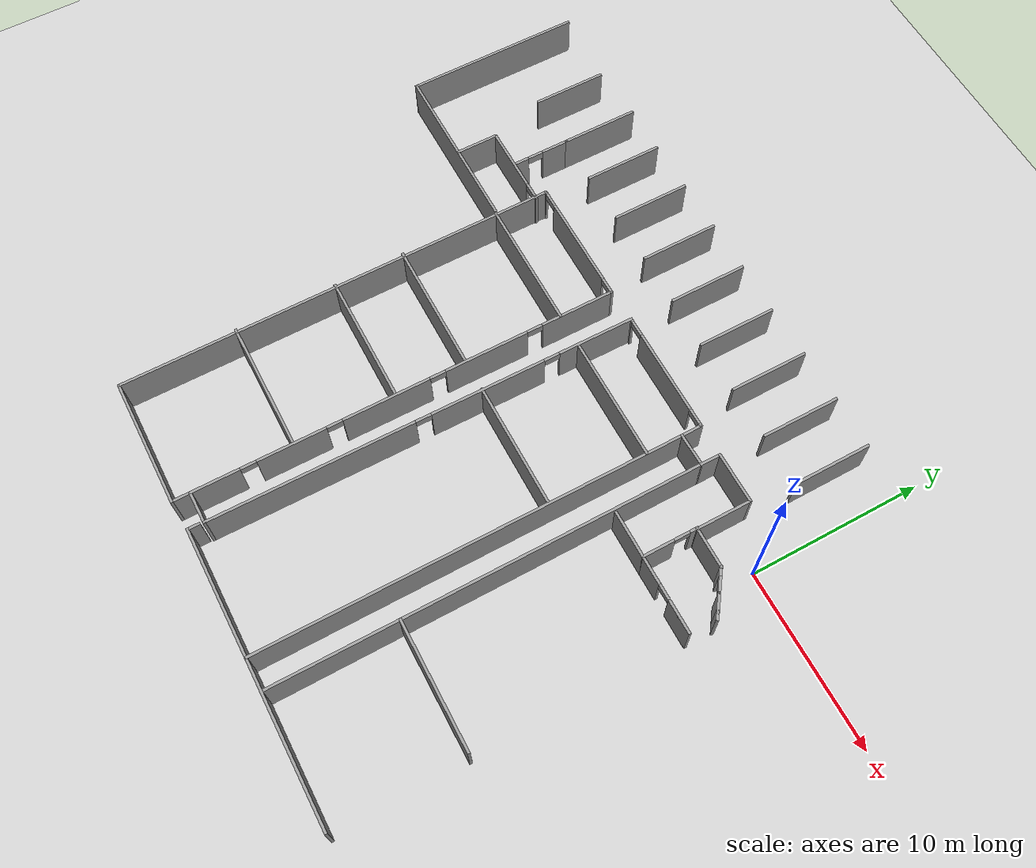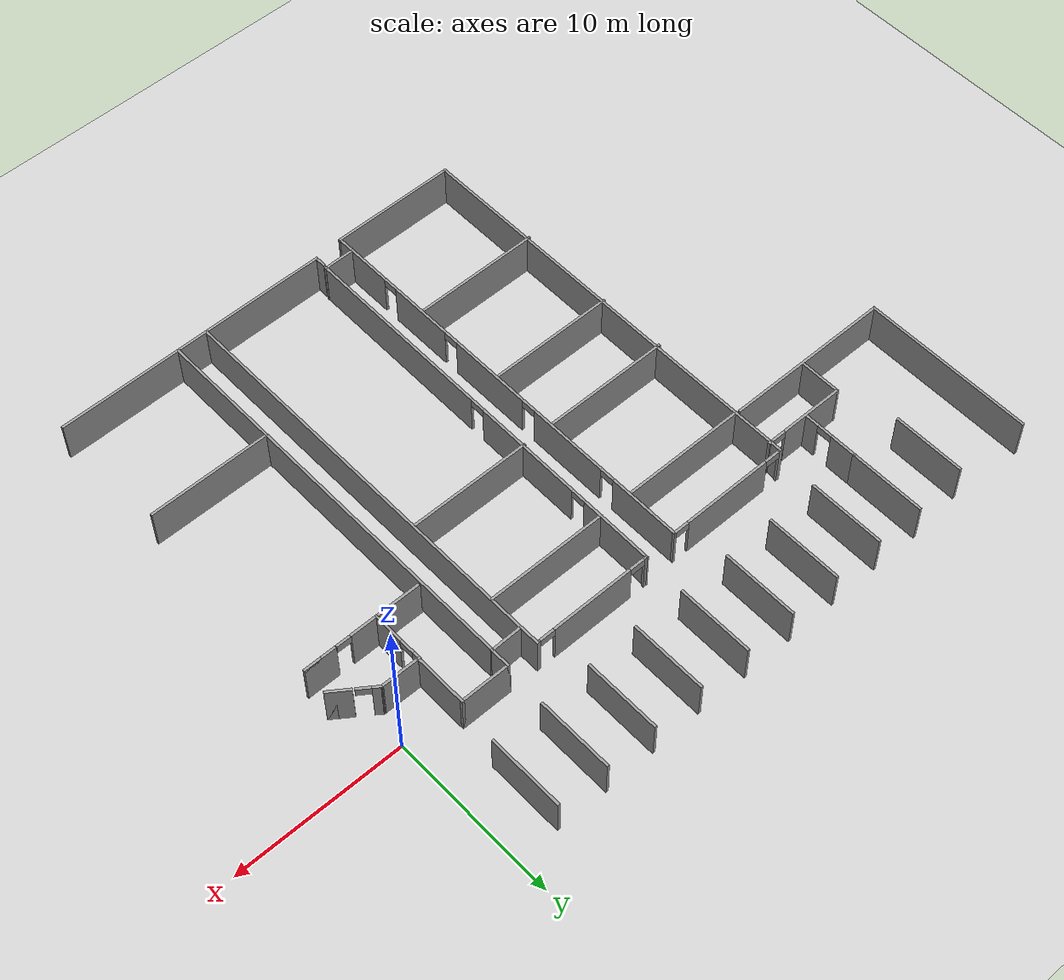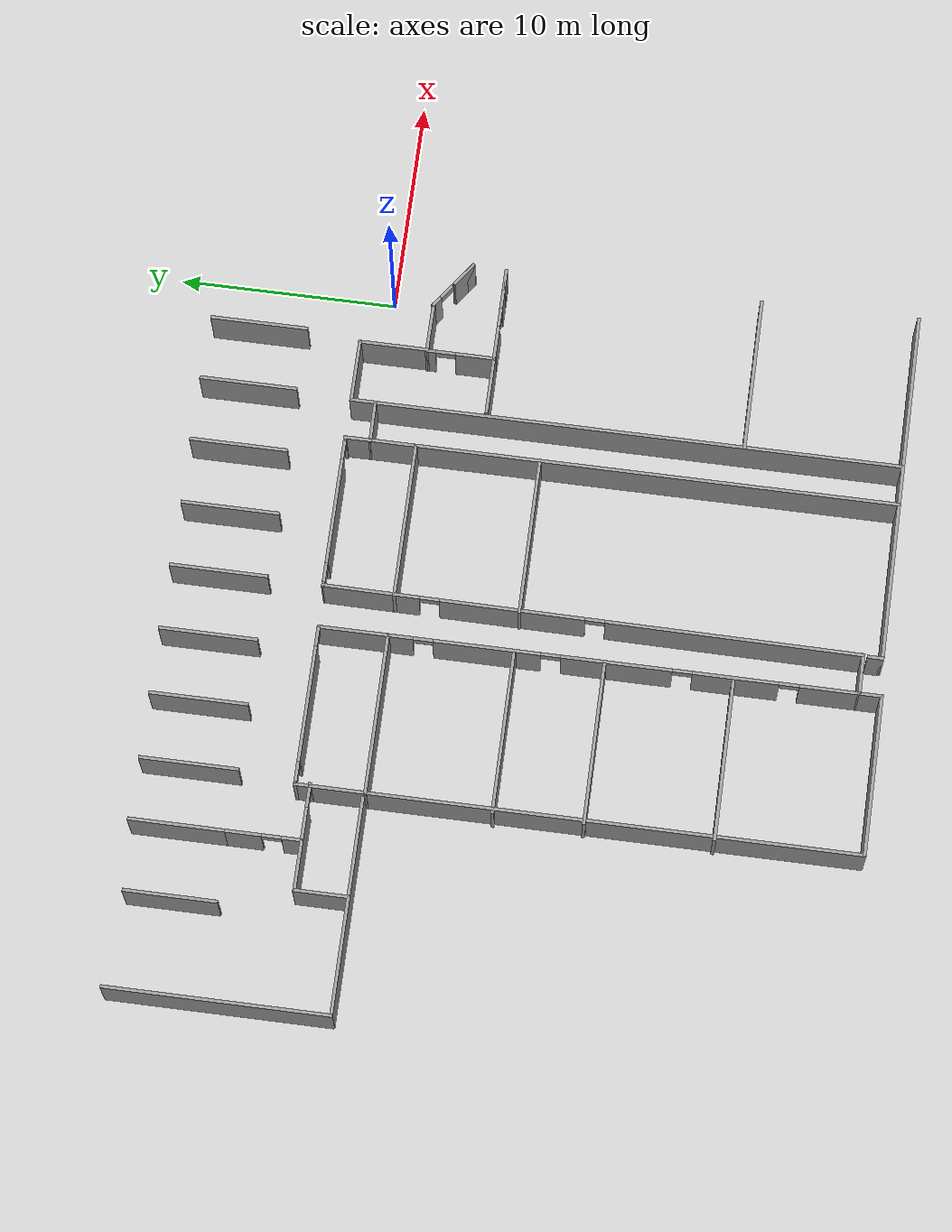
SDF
<sdf version="1.7">
 <world name="default">
  <model name="ground_plane">
   <static>1</static>
   <link name="link">
    <collision name="collision">
     <geometry><plane><normal>0 0 1</normal><size>100 100</size></plane></geometry>
     <surface><friction><ode><mu>100</mu><mu2>50</mu2></ode></friction></surface>
    </collision>
    <visual name="visual">
     <cast_shadows>0</cast_shadows>
     <geometry><plane><normal>0 0 1</normal><size>100 100</size></plane></geometry>
     <material>
      <script><uri>file://media/materials/scripts/gazebo.material</uri><name>Gazebo/Grey</name></script>
     </material>
    </visual>
   </link>
  </model>
  <model name="jec_6th_all_doors">
   <pose>6.89447 -8.09984 0 0 -0 0</pose>
   <link name="Wall_114">
    <pose>-17.9306 9.30234 0 0 -0 0</pose>
    <visual name="Wall_114_Visual_0">
     <pose>-3.49815 0 1.25 0 -0 0</pose>
     <geometry><box><size>0.253703 0.15 2.5</size></box></geometry>
     <material>
      <script><uri>file://media/materials/scripts/gazebo.material</uri><name>Gazebo/Grey</name></script>
      <ambient>1 1 1 1</ambient>
     </material>
     <meta><layer>0</layer></meta>
    </visual>
    <collision name="Wall_114_Collision_0">
     <geometry><box><size>0.253703 0.15 2.5</size></box></geometry>
     <pose>-3.49815 0 1.25 0 -0 0</pose>
    </collision>
    <visual name="Wall_114_Visual_1">
     <pose>0.013816 0 1.25 0 -0 0</pose>
     <geometry><box><size>4.97023 0.15 2.5</size></box></geometry>
     <material>
      <script><uri>file://media/materials/scripts/gazebo.material</uri><name>Gazebo/Grey</name></script>
      <ambient>1 1 1 1</ambient>
     </material>
     <meta><layer>0</layer></meta>
    </visual>
    <collision name="Wall_114_Collision_1">
     <geometry><box><size>4.97023 0.15 2.5</size></box></geometry>
     <pose>0.013816 0 1.25 0 -0 0</pose>
    </collision>
    <visual name="Wall_114_Visual_2">
     <pose>3.51197 0 1.25 0 -0 0</pose>
     <geometry><box><size>0.22607 0.15 2.5</size></box></geometry>
     <material>
      <script><uri>file://media/materials/scripts/gazebo.material</uri><name>Gazebo/Grey</name></script>
      <ambient>1 1 1 1</ambient>
     </material>
     <meta><layer>0</layer></meta>
    </visual>
    <collision name="Wall_114_Collision_2">
     <geometry><box><size>0.22607 0.15 2.5</size></box></geometry>
     <pose>3.51197 0 1.25 0 -0 0</pose>
    </collision>
    <visual name="Wall_114_Visual_3">
     <pose>-2.9213 0 2.25 0 -0 0</pose>
     <geometry><box><size>0.9 0.15 0.5</size></box></geometry>
     <material>
      <script><uri>file://media/materials/scripts/gazebo.material</uri><name>Gazebo/Grey</name></script>
      <ambient>1 1 1 1</ambient>
     </material>
     <meta><layer>0</layer></meta>
    </visual>
    <collision name="Wall_114_Collision_3">
     <geometry><box><size>0.9 0.15 0.5</size></box></geometry>
     <pose>-2.9213 0 2.25 0 -0 0</pose>
    </collision>
    <visual name="Wall_114_Visual_4">
     <pose>2.94893 0 2.25 0 -0 0</pose>
     <geometry><box><size>0.9 0.15 0.5</size></box></geometry>
     <material>
      <script><uri>file://media/materials/scripts/gazebo.material</uri><name>Gazebo/Grey</name></script>
      <ambient>1 1 1 1</ambient>
     </material>
     <meta><layer>0</layer></meta>
    </visual>
    <collision name="Wall_114_Collision_4">
     <geometry><box><size>0.9 0.15 0.5</size></box></geometry>
     <pose>2.94893 0 2.25 0 -0 0</pose>
    </collision>
   </link>
   <link name="Wall_115">
    <collision name="Wall_115_Collision">
     <geometry><box><size>1.29228 0.15 2.5</size></box></geometry>
     <pose>0 0 1.25 0 -0 0</pose>
    </collision>
    <visual name="Wall_115_Visual">
     <pose>0 0 1.25 0 -0 0</pose>
     <geometry><box><size>1.29228 0.15 2.5</size></box></geometry>
     <material>
      <script><uri>file://media/materials/scripts/gazebo.material</uri><name>Gazebo/Grey</name></script>
      <ambient>1 1 1 1</ambient>
     </material>
     <meta><layer>0</layer></meta>
    </visual>
    <pose>-14.3714 8.72789 0 0 -0 -1.56045</pose>
   </link>
   <link name="Wall_116">
    <collision name="Wall_116_Collision">
     <geometry><box><size>1.98184 0.15 2.5</size></box></geometry>
     <pose>0 0 1.25 0 -0 0</pose>
    </collision>
    <visual name="Wall_116_Visual">
     <pose>0 0 1.25 0 -0 0</pose>
     <geometry><box><size>1.98184 0.15 2.5</size></box></geometry>
     <material>
      <script><uri>file://media/materials/scripts/gazebo.material</uri><name>Gazebo/Grey</name></script>
      <ambient>1 1 1 1</ambient>
     </material>
     <meta><layer>0</layer></meta>
    </visual>
    <pose>-13.4497 8.17381 0 0 -0 0.018591</pose>
   </link>
   <link name="Wall_117">
    <collision name="Wall_117_Collision">
     <geometry><box><size>1.25 0.15 2.5</size></box></geometry>
     <pose>0 0 1.25 0 -0 0</pose>
    </collision>
    <visual name="Wall_117_Visual">
     <pose>0 0 1.25 0 -0 0</pose>
     <geometry><box><size>1.25 0.15 2.5</size></box></geometry>
     <material>
      <script><uri>file://media/materials/scripts/gazebo.material</uri><name>Gazebo/Grey</name></script>
      <ambient>1 1 1 1</ambient>
     </material>
     <meta><layer>0</layer></meta>
    </visual>
    <pose>-12.5339 8.74083 0 0 -0 1.5708</pose>
   </link>
   <link name="Wall_118">
    <collision name="Wall_118_Collision">
     <geometry><box><size>3 0.15 2.5</size></box></geometry>
     <pose>0 0 1.25 0 -0 0</pose>
    </collision>
    <visual name="Wall_118_Visual">
     <pose>0 0 1.25 0 -0 0</pose>
     <geometry><box><size>3 0.15 2.5</size></box></geometry>
     <material>
      <script><uri>file://media/materials/scripts/gazebo.material</uri><name>Gazebo/Grey</name></script>
      <ambient>1 1 1 1</ambient>
     </material>
     <meta><layer>0</layer></meta>
    </visual>
    <pose>-11.1089 9.29083 0 0 -0 0</pose>
   </link>
   <link name="Wall_164">
    <collision name="Wall_164_Collision">
     <geometry><box><size>24.25 0.15 2.5</size></box></geometry>
     <pose>0 0 1.25 0 -0 0</pose>
    </collision>
    <visual name="Wall_164_Visual">
     <pose>0 0 1.25 0 -0 0</pose>
     <geometry><box><size>24.25 0.15 2.5</size></box></geometry>
     <material>
      <script><uri>file://media/materials/scripts/gazebo.material</uri><name>Gazebo/Grey</name></script>
      <ambient>1 1 1 1</ambient>
     </material>
     <meta><layer>0</layer></meta>
    </visual>
    <pose>-12.542 -3.871 0 0 -0 1.5708</pose>
   </link>
   <link name="Wall_166">
    <collision name="Wall_166_Collision">
     <geometry><box><size>24.25 0.15 2.5</size></box></geometry>
     <pose>0 0 1.25 0 -0 0</pose>
    </collision>
    <visual name="Wall_166_Visual">
     <pose>0 0 1.25 0 -0 0</pose>
     <geometry><box><size>24.25 0.15 2.5</size></box></geometry>
     <material>
      <script><uri>file://media/materials/scripts/gazebo.material</uri><name>Gazebo/Grey</name></script>
      <ambient>1 1 1 1</ambient>
     </material>
     <meta><layer>0</layer></meta>
    </visual>
    <pose>-14.3655 -3.89322 0 0 -0 -1.5708</pose>
   </link>
   <link name="Wall_168">
    <collision name="Wall_168_Collision">
     <geometry><box><size>7.25 0.15 2.5</size></box></geometry>
     <pose>0 0 1.25 0 -0 0</pose>
    </collision>
    <visual name="Wall_168_Visual">
     <pose>0 0 1.25 0 -0 0</pose>
     <geometry><box><size>7.25 0.15 2.5</size></box></geometry>
     <material>
      <script><uri>file://media/materials/scripts/gazebo.material</uri><name>Gazebo/Grey</name></script>
      <ambient>1 1 1 1</ambient>
     </material>
     <meta><layer>0</layer></meta>
    </visual>
    <pose>-18.0458 0.388789 0 0 -0 0</pose>
   </link>
   <link name="Wall_17">
    <pose>-21.5623 -2.90601 0 0 -0 -1.57748</pose>
    <visual name="Wall_17_Visual_0">
     <pose>-10.0629 0 1.25 0 -0 0</pose>
     <geometry><box><size>4.44153 0.15 2.5</size></box></geometry>
     <material>
      <script><uri>file://media/materials/scripts/gazebo.material</uri><name>Gazebo/Grey</name></script>
      <ambient>1 1 1 1</ambient>
     </material>
     <meta><layer>0</layer></meta>
    </visual>
    <collision name="Wall_17_Collision_0">
     <geometry><box><size>4.44153 0.15 2.5</size></box></geometry>
     <pose>-10.0629 0 1.25 0 -0 0</pose>
    </collision>
    <visual name="Wall_17_Visual_1">
     <pose>-3.63692 0 1.25 0 -0 0</pose>
     <geometry><box><size>6.61036 0.15 2.5</size></box></geometry>
     <material>
      <script><uri>file://media/materials/scripts/gazebo.material</uri><name>Gazebo/Grey</name></script>
      <ambient>1 1 1 1</ambient>
     </material>
     <meta><layer>0</layer></meta>
    </visual>
    <collision name="Wall_17_Collision_1">
     <geometry><box><size>6.61036 0.15 2.5</size></box></geometry>
     <pose>-3.63692 0 1.25 0 -0 0</pose>
    </collision>
    <visual name="Wall_17_Visual_2">
     <pose>6.42594 0 1.25 0 -0 0</pose>
     <geometry><box><size>11.7154 0.15 2.5</size></box></geometry>
     <material>
      <script><uri>file://media/materials/scripts/gazebo.material</uri><name>Gazebo/Grey</name></script>
      <ambient>1 1 1 1</ambient>
     </material>
     <meta><layer>0</layer></meta>
    </visual>
    <collision name="Wall_17_Collision_2">
     <geometry><box><size>11.7154 0.15 2.5</size></box></geometry>
     <pose>6.42594 0 1.25 0 -0 0</pose>
    </collision>
    <visual name="Wall_17_Visual_3">
     <pose>-7.39209 0 2.25 0 -0 0</pose>
     <geometry><box><size>0.9 0.15 0.5</size></box></geometry>
     <material>
      <script><uri>file://media/materials/scripts/gazebo.material</uri><name>Gazebo/Grey</name></script>
      <ambient>1 1 1 1</ambient>
     </material>
     <meta><layer>0</layer></meta>
    </visual>
    <collision name="Wall_17_Collision_3">
     <geometry><box><size>0.9 0.15 0.5</size></box></geometry>
     <pose>-7.39209 0 2.25 0 -0 0</pose>
    </collision>
    <visual name="Wall_17_Visual_4">
     <pose>0.118263 0 2.25 0 -0 0</pose>
     <geometry><box><size>0.9 0.15 0.5</size></box></geometry>
     <material>
      <script><uri>file://media/materials/scripts/gazebo.material</uri><name>Gazebo/Grey</name></script>
      <ambient>1 1 1 1</ambient>
     </material>
     <meta><layer>0</layer></meta>
    </visual>
    <collision name="Wall_17_Collision_4">
     <geometry><box><size>0.9 0.15 0.5</size></box></geometry>
     <pose>0.118263 0 2.25 0 -0 0</pose>
    </collision>
   </link>
   <link name="Wall_170">
    <collision name="Wall_170_Collision">
     <geometry><box><size>7.25 0.15 2.5</size></box></geometry>
     <pose>0 0 1.25 0 -0 0</pose>
    </collision>
    <visual name="Wall_170_Visual">
     <pose>0 0 1.25 0 -0 0</pose>
     <geometry><box><size>7.25 0.15 2.5</size></box></geometry>
     <material>
      <script><uri>file://media/materials/scripts/gazebo.material</uri><name>Gazebo/Grey</name></script>
      <ambient>1 1 1 1</ambient>
     </material>
     <meta><layer>0</layer></meta>
    </visual>
    <pose>-17.962 6.0697 0 0 -0 0</pose>
   </link>
   <link name="Wall_172">
    <collision name="Wall_172_Collision">
     <geometry><box><size>7.5 0.15 2.5</size></box></geometry>
     <pose>0 0 1.25 0 -0 0</pose>
    </collision>
    <visual name="Wall_172_Visual">
     <pose>0 0 1.25 0 -0 0</pose>
     <geometry><box><size>7.5 0.15 2.5</size></box></geometry>
     <material>
      <script><uri>file://media/materials/scripts/gazebo.material</uri><name>Gazebo/Grey</name></script>
      <ambient>1 1 1 1</ambient>
     </material>
     <meta><layer>0</layer></meta>
    </visual>
    <pose>-27.1444 6.0861 0 0 -0 0</pose>
   </link>
   <link name="Wall_174">
    <collision name="Wall_174_Collision">
     <geometry><box><size>7.5 0.15 2.5</size></box></geometry>
     <pose>0 0 1.25 0 -0 0</pose>
    </collision>
    <visual name="Wall_174_Visual">
     <pose>0 0 1.25 0 -0 0</pose>
     <geometry><box><size>7.5 0.15 2.5</size></box></geometry>
     <material>
      <script><uri>file://media/materials/scripts/gazebo.material</uri><name>Gazebo/Grey</name></script>
      <ambient>1 1 1 1</ambient>
     </material>
     <meta><layer>0</layer></meta>
    </visual>
    <pose>-27.2593 0.386482 0 0 -0 0</pose>
   </link>
   <link name="Wall_176">
    <collision name="Wall_176_Collision">
     <geometry><box><size>7.5 0.15 2.5</size></box></geometry>
     <pose>0 0 1.25 0 -0 0</pose>
    </collision>
    <visual name="Wall_176_Visual">
     <pose>0 0 1.25 0 -0 0</pose>
     <geometry><box><size>7.5 0.15 2.5</size></box></geometry>
     <material>
      <script><uri>file://media/materials/scripts/gazebo.material</uri><name>Gazebo/Grey</name></script>
      <ambient>1 1 1 1</ambient>
     </material>
     <meta><layer>0</layer></meta>
    </visual>
    <pose>-27.2178 -3.68884 0 0 -0 0</pose>
   </link>
   <link name="Wall_178">
    <collision name="Wall_178_Collision">
     <geometry><box><size>7.5 0.15 2.5</size></box></geometry>
     <pose>0 0 1.25 0 -0 0</pose>
    </collision>
    <visual name="Wall_178_Visual">
     <pose>0 0 1.25 0 -0 0</pose>
     <geometry><box><size>7.5 0.15 2.5</size></box></geometry>
     <material>
      <script><uri>file://media/materials/scripts/gazebo.material</uri><name>Gazebo/Grey</name></script>
      <ambient>1 1 1 1</ambient>
     </material>
     <meta><layer>0</layer></meta>
    </visual>
    <pose>-27.2386 -9.48993 0 0 -0 0</pose>
   </link>
   <link name="Wall_18">
    <collision name="Wall_18_Collision">
     <geometry><box><size>1.95039 0.15 2.5</size></box></geometry>
     <pose>0 0 1.25 0 -0 0</pose>
    </collision>
    <visual name="Wall_18_Visual">
     <pose>0 0 1.25 0 -0 0</pose>
     <geometry><box><size>1.95039 0.15 2.5</size></box></geometry>
     <material>
      <script><uri>file://media/materials/scripts/gazebo.material</uri><name>Gazebo/Grey</name></script>
      <ambient>1 1 1 1</ambient>
     </material>
     <meta><layer>0</layer></meta>
    </visual>
    <pose>-22.5374 -15.125 0 0 -0 -3.13727</pose>
   </link>
   <link name="Wall_182">
    <collision name="Wall_182_Collision">
     <geometry><box><size>7.25 0.15 2.5</size></box></geometry>
     <pose>0 0 1.25 0 -0 0</pose>
    </collision>
    <visual name="Wall_182_Visual">
     <pose>0 0 1.25 0 -0 0</pose>
     <geometry><box><size>7.25 0.15 2.5</size></box></geometry>
     <material>
      <script><uri>file://media/materials/scripts/gazebo.material</uri><name>Gazebo/Grey</name></script>
      <ambient>1 1 1 1</ambient>
     </material>
     <meta><layer>0</layer></meta>
    </visual>
    <pose>-8.98303 -8.7414 0 0 -0 0</pose>
   </link>
   <link name="Wall_19">
    <pose>-23.4376 -2.95384 0 0 -0 1.5708</pose>
    <visual name="Wall_19_Visual_0">
     <pose>-10.8656 0 1.25 0 -0 0</pose>
     <geometry><box><size>2.76882 0.15 2.5</size></box></geometry>
     <material>
      <script><uri>file://media/materials/scripts/gazebo.material</uri><name>Gazebo/Grey</name></script>
      <ambient>1 1 1 1</ambient>
     </material>
     <meta><layer>0</layer></meta>
    </visual>
    <collision name="Wall_19_Collision_0">
     <geometry><box><size>2.76882 0.15 2.5</size></box></geometry>
     <pose>-10.8656 0 1.25 0 -0 0</pose>
    </collision>
    <visual name="Wall_19_Visual_1">
     <pose>-6.62965 0 1.25 0 -0 0</pose>
     <geometry><box><size>3.90306 0.15 2.5</size></box></geometry>
     <material>
      <script><uri>file://media/materials/scripts/gazebo.material</uri><name>Gazebo/Grey</name></script>
      <ambient>1 1 1 1</ambient>
     </material>
     <meta><layer>0</layer></meta>
    </visual>
    <collision name="Wall_19_Collision_1">
     <geometry><box><size>3.90306 0.15 2.5</size></box></geometry>
     <pose>-6.62965 0 1.25 0 -0 0</pose>
    </collision>
    <visual name="Wall_19_Visual_2">
     <pose>-1.2652 0 1.25 0 -0 0</pose>
     <geometry><box><size>5.02585 0.15 2.5</size></box></geometry>
     <material>
      <script><uri>file://media/materials/scripts/gazebo.material</uri><name>Gazebo/Grey</name></script>
      <ambient>1 1 1 1</ambient>
     </material>
     <meta><layer>0</layer></meta>
    </visual>
    <collision name="Wall_19_Collision_2">
     <geometry><box><size>5.02585 0.15 2.5</size></box></geometry>
     <pose>-1.2652 0 1.25 0 -0 0</pose>
    </collision>
    <visual name="Wall_19_Visual_3">
     <pose>4.57983 0 1.25 0 -0 0</pose>
     <geometry><box><size>4.86422 0.15 2.5</size></box></geometry>
     <material>
      <script><uri>file://media/materials/scripts/gazebo.material</uri><name>Gazebo/Grey</name></script>
      <ambient>1 1 1 1</ambient>
     </material>
     <meta><layer>0</layer></meta>
    </visual>
    <collision name="Wall_19_Collision_3">
     <geometry><box><size>4.86422 0.15 2.5</size></box></geometry>
     <pose>4.57983 0 1.25 0 -0 0</pose>
    </collision>
    <visual name="Wall_19_Visual_4">
     <pose>10.081 0 1.25 0 -0 0</pose>
     <geometry><box><size>4.33806 0.15 2.5</size></box></geometry>
     <material>
      <script><uri>file://media/materials/scripts/gazebo.material</uri><name>Gazebo/Grey</name></script>
      <ambient>1 1 1 1</ambient>
     </material>
     <meta><layer>0</layer></meta>
    </visual>
    <collision name="Wall_19_Collision_4">
     <geometry><box><size>4.33806 0.15 2.5</size></box></geometry>
     <pose>10.081 0 1.25 0 -0 0</pose>
    </collision>
    <visual name="Wall_19_Visual_5">
     <pose>-9.03118 0 2.25 0 -0 0</pose>
     <geometry><box><size>0.9 0.15 0.5</size></box></geometry>
     <material>
      <script><uri>file://media/materials/scripts/gazebo.material</uri><name>Gazebo/Grey</name></script>
      <ambient>1 1 1 1</ambient>
     </material>
     <meta><layer>0</layer></meta>
    </visual>
    <collision name="Wall_19_Collision_5">
     <geometry><box><size>0.9 0.15 0.5</size></box></geometry>
     <pose>-9.03118 0 2.25 0 -0 0</pose>
    </collision>
    <visual name="Wall_19_Visual_6">
     <pose>-4.22813 0 2.25 0 -0 0</pose>
     <geometry><box><size>0.9 0.15 0.5</size></box></geometry>
     <material>
      <script><uri>file://media/materials/scripts/gazebo.material</uri><name>Gazebo/Grey</name></script>
      <ambient>1 1 1 1</ambient>
     </material>
     <meta><layer>0</layer></meta>
    </visual>
    <collision name="Wall_19_Collision_6">
     <geometry><box><size>0.9 0.15 0.5</size></box></geometry>
     <pose>-4.22813 0 2.25 0 -0 0</pose>
    </collision>
    <visual name="Wall_19_Visual_7">
     <pose>1.69772 0 2.25 0 -0 0</pose>
     <geometry><box><size>0.9 0.15 0.5</size></box></geometry>
     <material>
      <script><uri>file://media/materials/scripts/gazebo.material</uri><name>Gazebo/Grey</name></script>
      <ambient>1 1 1 1</ambient>
     </material>
     <meta><layer>0</layer></meta>
    </visual>
    <collision name="Wall_19_Collision_7">
     <geometry><box><size>0.9 0.15 0.5</size></box></geometry>
     <pose>1.69772 0 2.25 0 -0 0</pose>
    </collision>
    <visual name="Wall_19_Visual_8">
     <pose>7.46194 0 2.25 0 -0 0</pose>
     <geometry><box><size>0.9 0.15 0.5</size></box></geometry>
     <material>
      <script><uri>file://media/materials/scripts/gazebo.material</uri><name>Gazebo/Grey</name></script>
      <ambient>1 1 1 1</ambient>
     </material>
     <meta><layer>0</layer></meta>
    </visual>
    <collision name="Wall_19_Collision_8">
     <geometry><box><size>0.9 0.15 0.5</size></box></geometry>
     <pose>7.46194 0 2.25 0 -0 0</pose>
    </collision>
   </link>
   <link name="Wall_194">
    <pose>-9.72394 4.6475 0 0 -0 -1.5708</pose>
    <visual name="Wall_194_Visual_0">
     <pose>-1.38124 0 1.25 0 -0 0</pose>
     <geometry><box><size>0.487525 0.15 2.5</size></box></geometry>
     <material>
      <script><uri>file://media/materials/scripts/gazebo.material</uri><name>Gazebo/Grey</name></script>
      <ambient>1 1 1 1</ambient>
     </material>
     <meta><layer>0</layer></meta>
    </visual>
    <collision name="Wall_194_Collision_0">
     <geometry><box><size>0.487525 0.15 2.5</size></box></geometry>
     <pose>-1.38124 0 1.25 0 -0 0</pose>
    </collision>
    <visual name="Wall_194_Visual_1">
     <pose>0.693762 0 1.25 0 -0 0</pose>
     <geometry><box><size>1.86248 0.15 2.5</size></box></geometry>
     <material>
      <script><uri>file://media/materials/scripts/gazebo.material</uri><name>Gazebo/Grey</name></script>
      <ambient>1 1 1 1</ambient>
     </material>
     <meta><layer>0</layer></meta>
    </visual>
    <collision name="Wall_194_Collision_1">
     <geometry><box><size>1.86248 0.15 2.5</size></box></geometry>
     <pose>0.693762 0 1.25 0 -0 0</pose>
    </collision>
    <visual name="Wall_194_Visual_2">
     <pose>-0.687475 0 2.25 0 -0 0</pose>
     <geometry><box><size>0.9 0.15 0.5</size></box></geometry>
     <material>
      <script><uri>file://media/materials/scripts/gazebo.material</uri><name>Gazebo/Grey</name></script>
      <ambient>1 1 1 1</ambient>
     </material>
     <meta><layer>0</layer></meta>
    </visual>
    <collision name="Wall_194_Collision_2">
     <geometry><box><size>0.9 0.15 0.5</size></box></geometry>
     <pose>-0.687475 0 2.25 0 -0 0</pose>
    </collision>
   </link>
   <link name="Wall_195">
    <pose>-7.54894 3.0975 0 0 -0 0</pose>
    <visual name="Wall_195_Visual_0">
     <pose>-1.41175 0 1.25 0 -0 0</pose>
     <geometry><box><size>1.67649 0.15 2.5</size></box></geometry>
     <material>
      <script><uri>file://media/materials/scripts/gazebo.material</uri><name>Gazebo/Grey</name></script>
      <ambient>1 1 1 1</ambient>
     </material>
     <meta><layer>0</layer></meta>
    </visual>
    <collision name="Wall_195_Collision_0">
     <geometry><box><size>1.67649 0.15 2.5</size></box></geometry>
     <pose>-1.41175 0 1.25 0 -0 0</pose>
    </collision>
    <visual name="Wall_195_Visual_1">
     <pose>1.28825 0 1.25 0 -0 0</pose>
     <geometry><box><size>1.92351 0.15 2.5</size></box></geometry>
     <material>
      <script><uri>file://media/materials/scripts/gazebo.material</uri><name>Gazebo/Grey</name></script>
      <ambient>1 1 1 1</ambient>
     </material>
     <meta><layer>0</layer></meta>
    </visual>
    <collision name="Wall_195_Collision_1">
     <geometry><box><size>1.92351 0.15 2.5</size></box></geometry>
     <pose>1.28825 0 1.25 0 -0 0</pose>
    </collision>
    <visual name="Wall_195_Visual_2">
     <pose>1.7271 0 1.25 0 -0 0</pose>
     <geometry><box><size>1.04579 0.15 2.5</size></box></geometry>
     <material>
      <script><uri>file://media/materials/scripts/gazebo.material</uri><name>Gazebo/Grey</name></script>
      <ambient>1 1 1 1</ambient>
     </material>
     <meta><layer>0</layer></meta>
    </visual>
    <collision name="Wall_195_Collision_2">
     <geometry><box><size>1.04579 0.15 2.5</size></box></geometry>
     <pose>1.7271 0 1.25 0 -0 0</pose>
    </collision>
    <visual name="Wall_195_Visual_3">
     <pose>-0.134649 0 2.25 0 -0 0</pose>
     <geometry><box><size>0.877719 0.15 0.5</size></box></geometry>
     <material>
      <script><uri>file://media/materials/scripts/gazebo.material</uri><name>Gazebo/Grey</name></script>
      <ambient>1 1 1 1</ambient>
     </material>
     <meta><layer>0</layer></meta>
    </visual>
    <collision name="Wall_195_Collision_3">
     <geometry><box><size>0.877719 0.15 0.5</size></box></geometry>
     <pose>-0.134649 0 2.25 0 -0 0</pose>
    </collision>
   </link>
   <link name="Wall_197">
    <collision name="Wall_197_Collision">
     <geometry><box><size>2.75 0.15 2.5</size></box></geometry>
     <pose>0 0 1.25 0 -0 0</pose>
    </collision>
    <visual name="Wall_197_Visual">
     <pose>0 0 1.25 0 -0 0</pose>
     <geometry><box><size>2.75 0.15 2.5</size></box></geometry>
     <material>
      <script><uri>file://media/materials/scripts/gazebo.material</uri><name>Gazebo/Grey</name></script>
      <ambient>1 1 1 1</ambient>
     </material>
     <meta><layer>0</layer></meta>
    </visual>
    <pose>-11.0239 3.0975 0 0 -0 3.14159</pose>
   </link>
   <link name="Wall_20">
    <pose>-27.1126 9.22116 0 0 -0 3.14159</pose>
    <visual name="Wall_20_Visual_0">
     <pose>-3.70001 0 1.25 0 -0 0</pose>
     <geometry><box><size>0.099973 0.15 2.5</size></box></geometry>
     <material>
      <script><uri>file://media/materials/scripts/gazebo.material</uri><name>Gazebo/Grey</name></script>
      <ambient>1 1 1 1</ambient>
     </material>
     <meta><layer>0</layer></meta>
    </visual>
    <collision name="Wall_20_Collision_0">
     <geometry><box><size>0.099973 0.15 2.5</size></box></geometry>
     <pose>-3.70001 0 1.25 0 -0 0</pose>
    </collision>
    <visual name="Wall_20_Visual_1">
     <pose>-0.05569 0 1.25 0 -0 0</pose>
     <geometry><box><size>5.38868 0.15 2.5</size></box></geometry>
     <material>
      <script><uri>file://media/materials/scripts/gazebo.material</uri><name>Gazebo/Grey</name></script>
      <ambient>1 1 1 1</ambient>
     </material>
     <meta><layer>0</layer></meta>
    </visual>
    <collision name="Wall_20_Collision_1">
     <geometry><box><size>5.38868 0.15 2.5</size></box></geometry>
     <pose>-0.05569 0 1.25 0 -0 0</pose>
    </collision>
    <visual name="Wall_20_Visual_2">
     <pose>3.64432 0 1.25 0 -0 0</pose>
     <geometry><box><size>0.211352 0.15 2.5</size></box></geometry>
     <material>
      <script><uri>file://media/materials/scripts/gazebo.material</uri><name>Gazebo/Grey</name></script>
      <ambient>1 1 1 1</ambient>
     </material>
     <meta><layer>0</layer></meta>
    </visual>
    <collision name="Wall_20_Collision_2">
     <geometry><box><size>0.211352 0.15 2.5</size></box></geometry>
     <pose>3.64432 0 1.25 0 -0 0</pose>
    </collision>
    <visual name="Wall_20_Visual_3">
     <pose>-3.20003 0 2.25 0 -0 0</pose>
     <geometry><box><size>0.9 0.15 0.5</size></box></geometry>
     <material>
      <script><uri>file://media/materials/scripts/gazebo.material</uri><name>Gazebo/Grey</name></script>
      <ambient>1 1 1 1</ambient>
     </material>
     <meta><layer>0</layer></meta>
    </visual>
    <collision name="Wall_20_Collision_3">
     <geometry><box><size>0.9 0.15 0.5</size></box></geometry>
     <pose>-3.20003 0 2.25 0 -0 0</pose>
    </collision>
    <visual name="Wall_20_Visual_4">
     <pose>3.08865 0 2.25 0 -0 0</pose>
     <geometry><box><size>0.9 0.15 0.5</size></box></geometry>
     <material>
      <script><uri>file://media/materials/scripts/gazebo.material</uri><name>Gazebo/Grey</name></script>
      <ambient>1 1 1 1</ambient>
     </material>
     <meta><layer>0</layer></meta>
    </visual>
    <collision name="Wall_20_Collision_4">
     <geometry><box><size>0.9 0.15 0.5</size></box></geometry>
     <pose>3.08865 0 2.25 0 -0 0</pose>
    </collision>
   </link>
   <link name="Wall_21">
    <collision name="Wall_21_Collision">
     <geometry><box><size>25.5 0.15 2.5</size></box></geometry>
     <pose>0 0 1.25 0 -0 0</pose>
    </collision>
    <visual name="Wall_21_Visual">
     <pose>0 0 1.25 0 -0 0</pose>
     <geometry><box><size>25.5 0.15 2.5</size></box></geometry>
     <material>
      <script><uri>file://media/materials/scripts/gazebo.material</uri><name>Gazebo/Grey</name></script>
      <ambient>1 1 1 1</ambient>
     </material>
     <meta><layer>0</layer></meta>
    </visual>
    <pose>-30.7876 -3.45384 0 0 -0 -1.5708</pose>
   </link>
   <link name="Wall_22">
    <collision name="Wall_22_Collision">
     <geometry><box><size>7.5 0.15 2.5</size></box></geometry>
     <pose>0 0 1.25 0 -0 0</pose>
    </collision>
    <visual name="Wall_22_Visual">
     <pose>0 0 1.25 0 -0 0</pose>
     <geometry><box><size>7.5 0.15 2.5</size></box></geometry>
     <material>
      <script><uri>file://media/materials/scripts/gazebo.material</uri><name>Gazebo/Grey</name></script>
      <ambient>1 1 1 1</ambient>
     </material>
     <meta><layer>0</layer></meta>
    </visual>
    <pose>-27.1126 -16.1288 0 0 -0 0</pose>
   </link>
   <link name="Wall_24">
    <collision name="Wall_24_Collision">
     <geometry><box><size>1.15 0.15 2.5</size></box></geometry>
     <pose>0 0 1.25 0 -0 0</pose>
    </collision>
    <visual name="Wall_24_Visual">
     <pose>0 0 1.25 0 -0 0</pose>
     <geometry><box><size>1.15 0.15 2.5</size></box></geometry>
     <material>
      <script><uri>file://media/materials/scripts/gazebo.material</uri><name>Gazebo/Grey</name></script>
      <ambient>1 1 1 1</ambient>
     </material>
     <meta><layer>0</layer></meta>
    </visual>
    <pose>-23.4376 -15.6288 0 0 -0 -1.5708</pose>
   </link>
   <link name="Wall_26">
    <collision name="Wall_26_Collision">
     <geometry><box><size>0.75 0.15 2.5</size></box></geometry>
     <pose>0 0 1.25 0 -0 0</pose>
    </collision>
    <visual name="Wall_26_Visual">
     <pose>0 0 1.25 0 -0 0</pose>
     <geometry><box><size>0.75 0.15 2.5</size></box></geometry>
     <material>
      <script><uri>file://media/materials/scripts/gazebo.material</uri><name>Gazebo/Grey</name></script>
      <ambient>1 1 1 1</ambient>
     </material>
     <meta><layer>0</layer></meta>
    </visual>
    <pose>-21.6875 -15.683 0 0 -0 -1.5708</pose>
   </link>
   <link name="Wall_27">
    <collision name="Wall_27_Collision">
     <geometry><box><size>16.5 0.15 2.5</size></box></geometry>
     <pose>0 0 1.25 0 -0 0</pose>
    </collision>
    <visual name="Wall_27_Visual">
     <pose>0 0 1.25 0 -0 0</pose>
     <geometry><box><size>16.5 0.15 2.5</size></box></geometry>
     <material>
      <script><uri>file://media/materials/scripts/gazebo.material</uri><name>Gazebo/Grey</name></script>
      <ambient>1 1 1 1</ambient>
     </material>
     <meta><layer>0</layer></meta>
    </visual>
    <pose>-13.5125 -15.983 0 0 -0 0</pose>
   </link>
   <link name="Wall_35">
    <collision name="Wall_35_Collision">
     <geometry><box><size>3.25 0.15 2.5</size></box></geometry>
     <pose>0 0 1.25 0 -0 0</pose>
    </collision>
    <visual name="Wall_35_Visual">
     <pose>0 0 1.25 0 -0 0</pose>
     <geometry><box><size>3.25 0.15 2.5</size></box></geometry>
     <material>
      <script><uri>file://media/materials/scripts/gazebo.material</uri><name>Gazebo/Grey</name></script>
      <ambient>1 1 1 1</ambient>
     </material>
     <meta><layer>0</layer></meta>
    </visual>
    <pose>-9.68394 7.74083 0 0 -0 -1.5708</pose>
   </link>
   <link name="Wall_39">
    <collision name="Wall_39_Collision">
     <geometry><box><size>2.42335 0.15 2.5</size></box></geometry>
     <pose>0 0 1.25 0 -0 0</pose>
    </collision>
    <visual name="Wall_39_Visual">
     <pose>0 0 1.25 0 -0 0</pose>
     <geometry><box><size>2.42335 0.15 2.5</size></box></geometry>
     <material>
      <script><uri>file://media/materials/scripts/gazebo.material</uri><name>Gazebo/Grey</name></script>
      <ambient>1 1 1 1</ambient>
     </material>
     <meta><layer>0</layer></meta>
    </visual>
    <pose>-8.58728 6.19083 0 0 -0 -0.005864</pose>
   </link>
   <link name="Wall_40">
    <pose>-6.37957 5.41162 0 0 -0 -0.624879</pose>
    <visual name="Wall_40_Visual_0">
     <pose>-1.12501 0 1.25 0 -0 0</pose>
     <geometry><box><size>0.541185 0.15 2.5</size></box></geometry>
     <material>
      <script><uri>file://media/materials/scripts/gazebo.material</uri><name>Gazebo/Grey</name></script>
      <ambient>1 1 1 1</ambient>
     </material>
     <meta><layer>0</layer></meta>
    </visual>
    <collision name="Wall_40_Collision_0">
     <geometry><box><size>0.541185 0.15 2.5</size></box></geometry>
     <pose>-1.12501 0 1.25 0 -0 0</pose>
    </collision>
    <visual name="Wall_40_Visual_1">
     <pose>0.720592 0 1.25 0 -0 0</pose>
     <geometry><box><size>1.35002 0.15 2.5</size></box></geometry>
     <material>
      <script><uri>file://media/materials/scripts/gazebo.material</uri><name>Gazebo/Grey</name></script>
      <ambient>1 1 1 1</ambient>
     </material>
     <meta><layer>0</layer></meta>
    </visual>
    <collision name="Wall_40_Collision_1">
     <geometry><box><size>1.35002 0.15 2.5</size></box></geometry>
     <pose>0.720592 0 1.25 0 -0 0</pose>
    </collision>
    <visual name="Wall_40_Visual_2">
     <pose>1.12109 0 1.25 0 -0 0</pose>
     <geometry><box><size>0.549024 0.15 2.5</size></box></geometry>
     <material>
      <script><uri>file://media/materials/scripts/gazebo.material</uri><name>Gazebo/Grey</name></script>
      <ambient>1 1 1 1</ambient>
     </material>
     <meta><layer>0</layer></meta>
    </visual>
    <collision name="Wall_40_Collision_2">
     <geometry><box><size>0.549024 0.15 2.5</size></box></geometry>
     <pose>1.12109 0 1.25 0 -0 0</pose>
    </collision>
    <visual name="Wall_40_Visual_3">
     <pose>-0.45392 0 2.25 0 -0 0</pose>
     <geometry><box><size>0.800999 0.15 0.5</size></box></geometry>
     <material>
      <script><uri>file://media/materials/scripts/gazebo.material</uri><name>Gazebo/Grey</name></script>
      <ambient>1 1 1 1</ambient>
     </material>
     <meta><layer>0</layer></meta>
    </visual>
    <collision name="Wall_40_Collision_3">
     <geometry><box><size>0.800999 0.15 0.5</size></box></geometry>
     <pose>-0.45392 0 2.25 0 -0 0</pose>
    </collision>
   </link>
   <link name="Wall_42">
    <collision name="Wall_42_Collision">
     <geometry><box><size>10.25 0.15 2.5</size></box></geometry>
     <pose>0 0 1.25 0 -0 0</pose>
    </collision>
    <visual name="Wall_42_Visual">
     <pose>0 0 1.25 0 -0 0</pose>
     <geometry><box><size>10.25 0.15 2.5</size></box></geometry>
     <material>
      <script><uri>file://media/materials/scripts/gazebo.material</uri><name>Gazebo/Grey</name></script>
      <ambient>1 1 1 1</ambient>
     </material>
     <meta><layer>0</layer></meta>
    </visual>
    <pose>-40.8952 11.2059 0 0 -0 -1.5708</pose>
   </link>
   <link name="Wall_43">
    <collision name="Wall_43_Collision">
     <geometry><box><size>10 0.15 2.5</size></box></geometry>
     <pose>0 0 1.25 0 -0 0</pose>
    </collision>
    <visual name="Wall_43_Visual">
     <pose>0 0 1.25 0 -0 0</pose>
     <geometry><box><size>10 0.15 2.5</size></box></geometry>
     <material>
      <script><uri>file://media/materials/scripts/gazebo.material</uri><name>Gazebo/Grey</name></script>
      <ambient>1 1 1 1</ambient>
     </material>
     <meta><layer>0</layer></meta>
    </visual>
    <pose>-35.9702 6.1559 0 0 -0 0</pose>
   </link>
   <link name="Wall_45">
    <collision name="Wall_45_Collision">
     <geometry><box><size>2.5 0.15 2.5</size></box></geometry>
     <pose>0 0 1.25 0 -0 0</pose>
    </collision>
    <visual name="Wall_45_Visual">
     <pose>0 0 1.25 0 -0 0</pose>
     <geometry><box><size>2.5 0.15 2.5</size></box></geometry>
     <material>
      <script><uri>file://media/materials/scripts/gazebo.material</uri><name>Gazebo/Grey</name></script>
      <ambient>1 1 1 1</ambient>
     </material>
     <meta><layer>0</layer></meta>
    </visual>
    <pose>-35.5574 7.38284 0 0 -0 1.5708</pose>
   </link>
   <link name="Wall_46">
    <pose>-33.1324 8.55784 0 0 -0 0</pose>
    <visual name="Wall_46_Visual_0">
     <pose>-0.568012 0 1.25 0 -0 0</pose>
     <geometry><box><size>3.86398 0.15 2.5</size></box></geometry>
     <material>
      <script><uri>file://media/materials/scripts/gazebo.material</uri><name>Gazebo/Grey</name></script>
      <ambient>1 1 1 1</ambient>
     </material>
     <meta><layer>0</layer></meta>
    </visual>
    <collision name="Wall_46_Collision_0">
     <geometry><box><size>3.86398 0.15 2.5</size></box></geometry>
     <pose>-0.568012 0 1.25 0 -0 0</pose>
    </collision>
    <visual name="Wall_46_Visual_1">
     <pose>2.38199 0 1.25 0 -0 0</pose>
     <geometry><box><size>0.236024 0.15 2.5</size></box></geometry>
     <material>
      <script><uri>file://media/materials/scripts/gazebo.material</uri><name>Gazebo/Grey</name></script>
      <ambient>1 1 1 1</ambient>
     </material>
     <meta><layer>0</layer></meta>
    </visual>
    <collision name="Wall_46_Collision_1">
     <geometry><box><size>0.236024 0.15 2.5</size></box></geometry>
     <pose>2.38199 0 1.25 0 -0 0</pose>
    </collision>
    <visual name="Wall_46_Visual_2">
     <pose>1.81398 0 2.25 0 -0 0</pose>
     <geometry><box><size>0.9 0.15 0.5</size></box></geometry>
     <material>
      <script><uri>file://media/materials/scripts/gazebo.material</uri><name>Gazebo/Grey</name></script>
      <ambient>1 1 1 1</ambient>
     </material>
     <meta><layer>0</layer></meta>
    </visual>
    <collision name="Wall_46_Collision_2">
     <geometry><box><size>0.9 0.15 0.5</size></box></geometry>
     <pose>1.81398 0 2.25 0 -0 0</pose>
    </collision>
   </link>
   <link name="Wall_49">
    <pose>-33.2848 10.2388 0 0 -0 1.5708</pose>
    <visual name="Wall_49_Visual_0">
     <pose>-1.26854 0 1.25 0 -0 0</pose>
     <geometry><box><size>0.962924 0.15 2.5</size></box></geometry>
     <material>
      <script><uri>file://media/materials/scripts/gazebo.material</uri><name>Gazebo/Grey</name></script>
      <ambient>1 1 1 1</ambient>
     </material>
     <meta><layer>0</layer></meta>
    </visual>
    <collision name="Wall_49_Collision_0">
     <geometry><box><size>0.962924 0.15 2.5</size></box></geometry>
     <pose>-1.26854 0 1.25 0 -0 0</pose>
    </collision>
    <visual name="Wall_49_Visual_1">
     <pose>0.931462 0 1.25 0 -0 0</pose>
     <geometry><box><size>1.63708 0.15 2.5</size></box></geometry>
     <material>
      <script><uri>file://media/materials/scripts/gazebo.material</uri><name>Gazebo/Grey</name></script>
      <ambient>1 1 1 1</ambient>
     </material>
     <meta><layer>0</layer></meta>
    </visual>
    <collision name="Wall_49_Collision_1">
     <geometry><box><size>1.63708 0.15 2.5</size></box></geometry>
     <pose>0.931462 0 1.25 0 -0 0</pose>
    </collision>
    <visual name="Wall_49_Visual_2">
     <pose>-0.337076 0 2.25 0 -0 0</pose>
     <geometry><box><size>0.9 0.15 0.5</size></box></geometry>
     <material>
      <script><uri>file://media/materials/scripts/gazebo.material</uri><name>Gazebo/Grey</name></script>
      <ambient>1 1 1 1</ambient>
     </material>
     <meta><layer>0</layer></meta>
    </visual>
    <collision name="Wall_49_Collision_2">
     <geometry><box><size>0.9 0.15 0.5</size></box></geometry>
     <pose>-0.337076 0 2.25 0 -0 0</pose>
    </collision>
   </link>
   <link name="Wall_64">
    <collision name="Wall_64_Collision">
     <geometry><box><size>4.25 0.15 2.5</size></box></geometry>
     <pose>0 0 1.25 0 -0 0</pose>
    </collision>
    <visual name="Wall_64_Visual">
     <pose>0 0 1.25 0 -0 0</pose>
     <geometry><box><size>4.25 0.15 2.5</size></box></geometry>
     <material>
      <script><uri>file://media/materials/scripts/gazebo.material</uri><name>Gazebo/Grey</name></script>
      <ambient>1 1 1 1</ambient>
     </material>
     <meta><layer>0</layer></meta>
    </visual>
    <pose>-36.5086 13.9386 0 0 -0 1.5708</pose>
   </link>
   <link name="Wall_67">
    <collision name="Wall_67_Collision">
     <geometry><box><size>4.5 0.15 2.5</size></box></geometry>
     <pose>0 0 1.25 0 -0 0</pose>
    </collision>
    <visual name="Wall_67_Visual">
     <pose>0 0 1.25 0 -0 0</pose>
     <geometry><box><size>4.5 0.15 2.5</size></box></geometry>
     <material>
      <script><uri>file://media/materials/scripts/gazebo.material</uri><name>Gazebo/Grey</name></script>
      <ambient>1 1 1 1</ambient>
     </material>
     <meta><layer>0</layer></meta>
    </visual>
    <pose>-33.2848 14.0888 0 0 -0 1.5708</pose>
   </link>
   <link name="Wall_69">
    <collision name="Wall_69_Collision">
     <geometry><box><size>4.5 0.15 2.5</size></box></geometry>
     <pose>0 0 1.25 0 -0 0</pose>
    </collision>
    <visual name="Wall_69_Visual">
     <pose>0 0 1.25 0 -0 0</pose>
     <geometry><box><size>4.5 0.15 2.5</size></box></geometry>
     <material>
      <script><uri>file://media/materials/scripts/gazebo.material</uri><name>Gazebo/Grey</name></script>
      <ambient>1 1 1 1</ambient>
     </material>
     <meta><layer>0</layer></meta>
    </visual>
    <pose>-30.4436 14.035 0 0 -0 1.5708</pose>
   </link>
   <link name="Wall_71">
    <collision name="Wall_71_Collision">
     <geometry><box><size>4.5 0.15 2.5</size></box></geometry>
     <pose>0 0 1.25 0 -0 0</pose>
    </collision>
    <visual name="Wall_71_Visual">
     <pose>0 0 1.25 0 -0 0</pose>
     <geometry><box><size>4.5 0.15 2.5</size></box></geometry>
     <material>
      <script><uri>file://media/materials/scripts/gazebo.material</uri><name>Gazebo/Grey</name></script>
      <ambient>1 1 1 1</ambient>
     </material>
     <meta><layer>0</layer></meta>
    </visual>
    <pose>-27.4319 14.0594 0 0 -0 1.5708</pose>
   </link>
   <link name="Wall_73">
    <collision name="Wall_73_Collision">
     <geometry><box><size>4.5 0.15 2.5</size></box></geometry>
     <pose>0 0 1.25 0 -0 0</pose>
    </collision>
    <visual name="Wall_73_Visual">
     <pose>0 0 1.25 0 -0 0</pose>
     <geometry><box><size>4.5 0.15 2.5</size></box></geometry>
     <material>
      <script><uri>file://media/materials/scripts/gazebo.material</uri><name>Gazebo/Grey</name></script>
      <ambient>1 1 1 1</ambient>
     </material>
     <meta><layer>0</layer></meta>
    </visual>
    <pose>-24.3957 14.0838 0 0 -0 1.5708</pose>
   </link>
   <link name="Wall_75">
    <collision name="Wall_75_Collision">
     <geometry><box><size>4.5 0.15 2.5</size></box></geometry>
     <pose>0 0 1.25 0 -0 0</pose>
    </collision>
    <visual name="Wall_75_Visual">
     <pose>0 0 1.25 0 -0 0</pose>
     <geometry><box><size>4.5 0.15 2.5</size></box></geometry>
     <material>
      <script><uri>file://media/materials/scripts/gazebo.material</uri><name>Gazebo/Grey</name></script>
      <ambient>1 1 1 1</ambient>
     </material>
     <meta><layer>0</layer></meta>
    </visual>
    <pose>-21.3949 14.0654 0 0 -0 1.5708</pose>
   </link>
   <link name="Wall_77">
    <collision name="Wall_77_Collision">
     <geometry><box><size>4.5 0.15 2.5</size></box></geometry>
     <pose>0 0 1.25 0 -0 0</pose>
    </collision>
    <visual name="Wall_77_Visual">
     <pose>0 0 1.25 0 -0 0</pose>
     <geometry><box><size>4.5 0.15 2.5</size></box></geometry>
     <material>
      <script><uri>file://media/materials/scripts/gazebo.material</uri><name>Gazebo/Grey</name></script>
      <ambient>1 1 1 1</ambient>
     </material>
     <meta><layer>0</layer></meta>
    </visual>
    <pose>-18.38 13.9953 0 0 -0 1.5708</pose>
   </link>
   <link name="Wall_79">
    <collision name="Wall_79_Collision">
     <geometry><box><size>4.5 0.15 2.5</size></box></geometry>
     <pose>0 0 1.25 0 -0 0</pose>
    </collision>
    <visual name="Wall_79_Visual">
     <pose>0 0 1.25 0 -0 0</pose>
     <geometry><box><size>4.5 0.15 2.5</size></box></geometry>
     <material>
      <script><uri>file://media/materials/scripts/gazebo.material</uri><name>Gazebo/Grey</name></script>
      <ambient>1 1 1 1</ambient>
     </material>
     <meta><layer>0</layer></meta>
    </visual>
    <pose>-15.3371 14.0654 0 0 -0 1.5708</pose>
   </link>
   <link name="Wall_83">
    <collision name="Wall_83_Collision">
     <geometry><box><size>4.5 0.15 2.5</size></box></geometry>
     <pose>0 0 1.25 0 -0 0</pose>
    </collision>
    <visual name="Wall_83_Visual">
     <pose>0 0 1.25 0 -0 0</pose>
     <geometry><box><size>4.5 0.15 2.5</size></box></geometry>
     <material>
      <script><uri>file://media/materials/scripts/gazebo.material</uri><name>Gazebo/Grey</name></script>
      <ambient>1 1 1 1</ambient>
     </material>
     <meta><layer>0</layer></meta>
    </visual>
    <pose>-12.3363 14.0654 0 0 -0 1.5708</pose>
   </link>
   <link name="Wall_85">
    <collision name="Wall_85_Collision">
     <geometry><box><size>4.5 0.15 2.5</size></box></geometry>
     <pose>0 0 1.25 0 -0 0</pose>
    </collision>
    <visual name="Wall_85_Visual">
     <pose>0 0 1.25 0 -0 0</pose>
     <geometry><box><size>4.5 0.15 2.5</size></box></geometry>
     <material>
      <script><uri>file://media/materials/scripts/gazebo.material</uri><name>Gazebo/Grey</name></script>
      <ambient>1 1 1 1</ambient>
     </material>
     <meta><layer>0</layer></meta>
    </visual>
    <pose>-9.36356 13.9953 0 0 -0 1.5708</pose>
   </link>
   <static>1</static>
  </model>
 </world>
</sdf>
